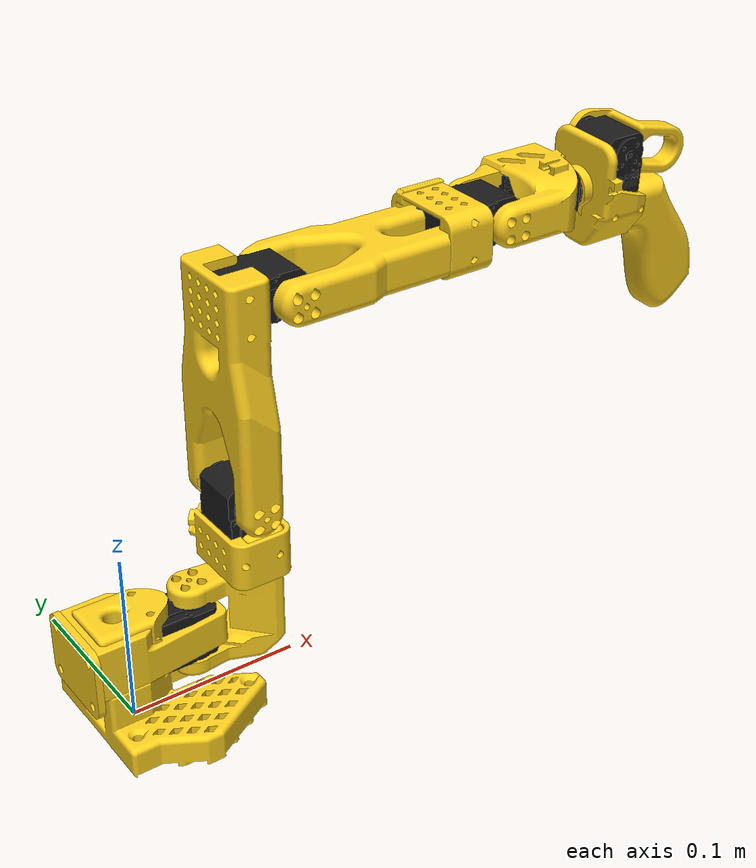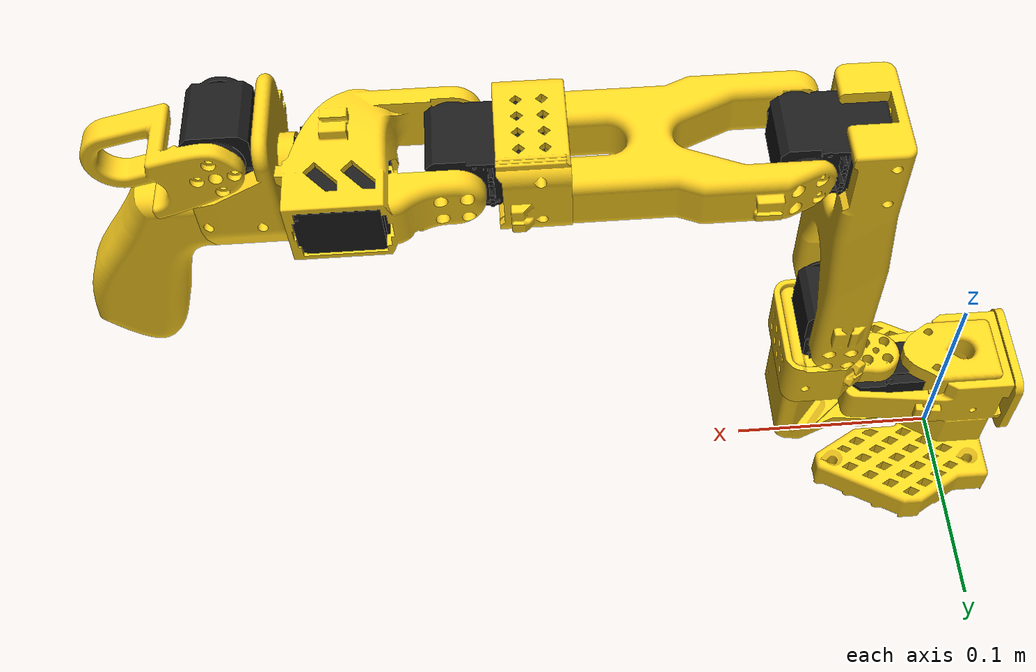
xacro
<?xml version="1.0"?>
<robot name="so101_arm" xmlns:xacro="http://www.ros.org/wiki/xacro">

  <xacro:arg name="variant" default="leader"/>          <!-- leader | follower -->
  <xacro:arg name="mesh_dir" default="package://so101_description/meshes"/>
  <xacro:arg name="add_transmissions" default="false"/>
  <xacro:arg name="use_ros2_control" default="false"/>
  <xacro:arg name="hardware_type" default="mock"/>
  <xacro:arg name="usb_port" default="/dev/ttyUSB0"/>
  <xacro:arg name="joint_config_file" default=""/>

  <!-- Camera args -->
  <xacro:arg name="enable_static_cam" default="false"/>
  <xacro:arg name="enable_wrist_cam" default="false"/>
  <xacro:arg name="cam_static_xyz" default="0.2 0.0 0.60"/>
  <xacro:arg name="cam_static_rpy" default="0.0 1.5708 0.0"/>
  <xacro:arg name="cam_wrist_xyz" default="0.0 0.0 -0.02"/>
  <xacro:arg name="cam_wrist_rpy" default="-1.5708 0.0 -1.5708"/>

  <!-- Convert args to properties for use in ${} expressions -->
  <xacro:property name="use_ros2_control" value="$(arg use_ros2_control)"/>
  <xacro:property name="variant" value="$(arg variant)"/>
  <xacro:property name="enable_static_cam" value="$(arg enable_static_cam)"/>
  <xacro:property name="enable_wrist_cam" value="$(arg enable_wrist_cam)"/>

  <xacro:include filename="$(find so101_description)/urdf/so101_macros.xacro"/>
  <xacro:include filename="$(find so101_description)/urdf/so101_materials.xacro"/>
  <xacro:include filename="$(find so101_description)/urdf/so101_arm_common.xacro"/>

  <xacro:include filename="$(find so101_description)/urdf/end_effectors/so101_ee_common.xacro"/>
  <xacro:include filename="$(find so101_description)/urdf/end_effectors/so101_ee_leader.xacro"/>
  <xacro:include filename="$(find so101_description)/urdf/end_effectors/so101_ee_follower.xacro"/>

  <xacro:include filename="$(find so101_description)/urdf/ros2_control/so101_ros2_control.xacro"/>
  <xacro:include filename="$(find so101_description)/urdf/so101_cameras.xacro"/>

  <xacro:so101_materials/>
  <xacro:so101_arm_common
    mesh_dir="$(arg mesh_dir)"
    add_transmissions="$(arg add_transmissions)"/>

  <xacro:if value="${variant == 'leader'}">
    <xacro:so101_ee_leader
      mesh_dir="$(arg mesh_dir)"
      add_transmissions="$(arg add_transmissions)"/>
  </xacro:if>

  <xacro:if value="${variant == 'follower'}">
    <xacro:so101_ee_follower
      mesh_dir="$(arg mesh_dir)"
      add_transmissions="$(arg add_transmissions)"/>
  </xacro:if>

  <xacro:if value="${use_ros2_control}">
    <xacro:so101_ros2_control
      variant="${variant}"
      hardware_type="$(arg hardware_type)"
      usb_port="$(arg usb_port)"
      joint_config_file="$(arg joint_config_file)"
      system_name="SO101_${variant}_SYSTEM"/>
  </xacro:if>

  <!-- Cameras (opt-in via enable_static_cam / enable_wrist_cam) -->
  <xacro:if value="${enable_static_cam}">
    <xacro:so101_static_camera
      xyz="$(arg cam_static_xyz)"
      rpy="$(arg cam_static_rpy)"/>
  </xacro:if>

  <xacro:if value="${enable_wrist_cam}">
    <xacro:so101_wrist_camera
      xyz="$(arg cam_wrist_xyz)"
      rpy="$(arg cam_wrist_rpy)"/>
  </xacro:if>

</robot>

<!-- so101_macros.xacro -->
<robot xmlns:xacro="http://www.ros.org/wiki/xacro">

  <!-- mesh visual + collision (same origin/mesh) -->
  <xacro:macro name="mesh_vc" params="filename xyz rpy material:=''">
    <visual>
      <origin xyz="${xyz}" rpy="${rpy}"/>
      <geometry><mesh filename="${filename}"/></geometry>
      <xacro:if value="${material != ''}">
        <material name="${material}"/>
      </xacro:if>
    </visual>
    <collision>
      <origin xyz="${xyz}" rpy="${rpy}"/>
      <geometry><mesh filename="${filename}"/></geometry>
    </collision>
  </xacro:macro>

  <xacro:macro name="inertial_block" params="xyz rpy mass ixx ixy ixz iyy iyz izz">
    <inertial>
      <origin xyz="${xyz}" rpy="${rpy}"/>
      <mass value="${mass}"/>
      <inertia ixx="${ixx}" ixy="${ixy}" ixz="${ixz}" iyy="${iyy}" iyz="${iyz}" izz="${izz}"/>
    </inertial>
  </xacro:macro>

  <xacro:macro name="simple_transmission" params="name joint actuator hw_if:='hardware_interface/PositionJointInterface' reduction:='1'">
    <transmission name="${name}">
      <type>transmission_interface/SimpleTransmission</type>
      <joint name="${joint}">
        <hardwareInterface>${hw_if}</hardwareInterface>
      </joint>
      <actuator name="${actuator}">
        <hardwareInterface>${hw_if}</hardwareInterface>
        <mechanicalReduction>${reduction}</mechanicalReduction>
      </actuator>
    </transmission>
  </xacro:macro>

</robot>

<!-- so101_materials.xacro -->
<robot xmlns:xacro="http://www.ros.org/wiki/xacro">

  <xacro:macro name="so101_materials" params="">
    <material name="3d_printed">
      <color rgba="1.0 0.82 0.12 1.0"/>
    </material>
    <material name="sts3215">
      <color rgba="0.1 0.1 0.1 1.0"/>
    </material>
  </xacro:macro>

</robot>

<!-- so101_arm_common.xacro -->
<robot xmlns:xacro="http://www.ros.org/wiki/xacro">

  <xacro:macro name="so101_arm_common"
               params="mesh_dir:='package://so101_description/meshes' add_transmissions:='false'">

    <!-- base_link -->
    <link name="base_link">
      <xacro:inertial_block
        xyz="0.0137179 -5.19711e-05 0.0334843" rpy="0 0 0"
        mass="0.147"
        ixx="0.000114686" ixy="-4.59787e-07" ixz="4.97151e-06"
        iyy="0.000136117" iyz="9.75275e-08" izz="0.000130364"/>

      <xacro:mesh_vc filename="${mesh_dir}/base_motor_holder_so101_v1.stl"
        xyz="-0.00636471 -9.94414e-05 -0.0024" rpy="1.5708 -1.67685e-15 1.5708" material="3d_printed"/>
      <xacro:mesh_vc filename="${mesh_dir}/base_so101_v2.stl"
        xyz="-0.00636471 -8.97657e-09 -0.0024" rpy="1.5708 -2.78073e-29 1.5708" material="3d_printed"/>
      <xacro:mesh_vc filename="${mesh_dir}/sts3215_03a_v1.stl"
        xyz="0.0263353 -8.97657e-09 0.0437" rpy="-8.21148e-16 7.84513e-18 1.249e-15" material="sts3215"/>
      <xacro:mesh_vc filename="${mesh_dir}/waveshare_mounting_plate_so101_v2.stl"
        xyz="-0.0309827 -0.000199441 0.0474" rpy="1.5708 -1.35493e-14 1.5708" material="3d_printed"/>
    </link>

    <!-- shoulder_link -->
    <link name="shoulder_link">
      <xacro:inertial_block
        xyz="-0.0307604 -1.66727e-05 -0.0252713" rpy="0 0 0"
        mass="0.100006"
        ixx="8.3759e-05" ixy="7.55525e-08" ixz="-1.16342e-06"
        iyy="8.10403e-05" iyz="1.54663e-07" izz="2.39783e-05"/>

      <xacro:mesh_vc filename="${mesh_dir}/sts3215_03a_v1.stl"
        xyz="-0.0303992 0.000422241 -0.0417" rpy="1.5708 1.5708 0" material="sts3215"/>
      <xacro:mesh_vc filename="${mesh_dir}/motor_holder_so101_base_v1.stl"
        xyz="-0.0675992 -0.000177759 0.0158499" rpy="1.5708 -1.5708 0" material="3d_printed"/>
      <xacro:mesh_vc filename="${mesh_dir}/rotation_pitch_so101_v1.stl"
        xyz="0.0122008 2.22413e-05 0.0464" rpy="-1.5708 2.35221e-33 0" material="3d_printed"/>
    </link>

    <!-- upper_arm_link -->
    <link name="upper_arm_link">
      <xacro:inertial_block
        xyz="-0.0898471 -0.00838224 0.0184089" rpy="0 0 0"
        mass="0.103"
        ixx="4.08002e-05" ixy="-1.97819e-05" ixz="-4.03016e-08"
        iyy="0.000147318" iyz="8.97326e-09" izz="0.000142487"/>

      <xacro:mesh_vc filename="${mesh_dir}/sts3215_03a_v1.stl"
        xyz="-0.11257 -0.0155 0.0187" rpy="-3.14159 -5.27356e-16 -1.5708" material="sts3215"/>
      <xacro:mesh_vc filename="${mesh_dir}/upper_arm_so101_v1.stl"
        xyz="-0.065085 0.012 0.0182" rpy="3.14159 -0 -1.30911e-30" material="3d_printed"/>
    </link>

    <!-- lower_arm_link -->
    <link name="lower_arm_link">
      <xacro:inertial_block
        xyz="-0.0980701 0.00324376 0.0182831" rpy="0 0 0"
        mass="0.104"
        ixx="2.87438e-05" ixy="7.41152e-06" ixz="1.26409e-06"
        iyy="0.000159844" iyz="-4.90188e-08" izz="0.00014529"/>

      <xacro:mesh_vc filename="${mesh_dir}/under_arm_so101_v1.stl"
        xyz="-0.0648499 -0.032 0.0182" rpy="3.14159 -0 6.67202e-31" material="3d_printed"/>
      <xacro:mesh_vc filename="${mesh_dir}/motor_holder_so101_wrist_v1.stl"
        xyz="-0.0648499 -0.032 0.018" rpy="-3.14159 -2.55351e-15 -1.83387e-30" material="3d_printed"/>
      <xacro:mesh_vc filename="${mesh_dir}/sts3215_03a_v1.stl"
        xyz="-0.1224 0.0052 0.0187" rpy="-3.14159 -7.88861e-31 -3.14159" material="sts3215"/>
    </link>

    <!-- wrist_link -->
    <link name="wrist_link">
      <xacro:inertial_block
        xyz="-0.000103312 -0.0386143 0.0281156" rpy="0 0 0"
        mass="0.079"
        ixx="3.68263e-05" ixy="1.7893e-08" ixz="-5.28128e-08"
        iyy="2.5391e-05" iyz="3.6412e-06" izz="2.1e-05"/>

      <xacro:mesh_vc filename="${mesh_dir}/sts3215_03a_no_horn_v1.stl"
        xyz="8.32667e-17 -0.0424 0.0306" rpy="1.5708 1.5708 0" material="sts3215"/>
      <xacro:mesh_vc filename="${mesh_dir}/wrist_roll_pitch_so101_v2.stl"
        xyz="0 -0.028 0.0181" rpy="-1.5708 -1.5708 0" material="3d_printed"/>
    </link>

    <!-- joints base->wrist -->
    <joint name="shoulder_pan" type="revolute">
      <origin xyz="0.0388353 -8.97657e-09 0.0624" rpy="3.14159 4.18253e-17 -3.14159"/>
      <parent link="base_link"/>
      <child link="shoulder_link"/>
      <axis xyz="0 0 1"/>
      <limit effort="10" velocity="10" lower="-1.91986" upper="1.91986"/>
    </joint>

    <joint name="shoulder_lift" type="revolute">
      <origin xyz="-0.0303992 -0.0182778 -0.0542" rpy="-1.5708 -1.5708 0"/>
      <parent link="shoulder_link"/>
      <child link="upper_arm_link"/>
      <axis xyz="0 0 1"/>
      <limit effort="10" velocity="10" lower="-1.74533" upper="1.74533"/>
    </joint>

    <joint name="elbow_flex" type="revolute">
      <origin xyz="-0.11257 -0.028 1.73763e-16" rpy="-3.63608e-16 8.74301e-16 1.5708"/>
      <parent link="upper_arm_link"/>
      <child link="lower_arm_link"/>
      <axis xyz="0 0 1"/>
      <limit effort="10" velocity="10" lower="-1.69" upper="1.69"/>
    </joint>

    <joint name="wrist_flex" type="revolute">
      <origin xyz="-0.1349 0.0052 3.62355e-17" rpy="4.02456e-15 8.67362e-16 -1.5708"/>
      <parent link="lower_arm_link"/>
      <child link="wrist_link"/>
      <axis xyz="0 0 1"/>
      <limit effort="10" velocity="10" lower="-1.65806" upper="1.65806"/>
    </joint>

    <!-- OPTIONAL transmissions motor1..motor4 -->
    <xacro:if value="${add_transmissions}">
      <xacro:simple_transmission name="shoulder_pan_trans"  joint="shoulder_pan"  actuator="motor1"/>
      <xacro:simple_transmission name="shoulder_lift_trans" joint="shoulder_lift" actuator="motor2"/>
      <xacro:simple_transmission name="elbow_flex_trans"    joint="elbow_flex"    actuator="motor3"/>
      <xacro:simple_transmission name="wrist_flex_trans"    joint="wrist_flex"    actuator="motor4"/>
    </xacro:if>

  </xacro:macro>

</robot>

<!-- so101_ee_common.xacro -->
<robot xmlns:xacro="http://www.ros.org/wiki/xacro">

  <!-- Shared: gripper_frame dummy link -->
  <xacro:macro name="so101_gripper_frame">
    <link name="gripper_frame_link">
      <inertial>
        <origin xyz="0 0 0" rpy="0 0 0"/>
        <mass value="1e-9"/>
        <inertia ixx="0" ixy="0" ixz="0" iyy="0" iyz="0" izz="0"/>
      </inertial>
    </link>

    <joint name="gripper_frame_joint" type="fixed">
      <origin xyz="-0.0079 -0.000218121 -0.0981274" rpy="0 3.14159 0"/>
      <parent link="gripper_link"/>
      <child link="gripper_frame_link"/>
    </joint>
  </xacro:macro>

  <!-- Shared: wrist_roll joint (+ optional transmission) -->
  <xacro:macro name="so101_wrist_roll_joint"
               params="add_transmission:='false'">
    <joint name="wrist_roll" type="revolute">
      <origin xyz="5.55112e-17 -0.0611 0.0181" rpy="1.5708 0.0486795 3.14159"/>
      <parent link="wrist_link"/>
      <child link="gripper_link"/>
      <axis xyz="0 0 1"/>
      <limit effort="10" velocity="10" lower="-2.74385" upper="2.84121"/>
    </joint>

    <xacro:if value="${add_transmission}">
      <xacro:simple_transmission
        name="wrist_roll_trans"
        joint="wrist_roll"
        actuator="motor5"/>
    </xacro:if>
  </xacro:macro>

</robot>

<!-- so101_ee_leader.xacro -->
<robot xmlns:xacro="http://www.ros.org/wiki/xacro">

  <xacro:macro name="so101_ee_leader"
               params="mesh_dir:='package://so101_description/meshes' add_transmissions:='false'">

    <link name="gripper_link">
      <xacro:inertial_block
        xyz="0.000213627 0.000245138 -0.025187" rpy="0 0 0"
        mass="0.087"
        ixx="2.75087e-05" ixy="-3.35241e-07" ixz="-5.7352e-06"
        iyy="4.33657e-05" iyz="-5.17847e-08" izz="3.45059e-05"/>

      <xacro:mesh_vc filename="${mesh_dir}/sts3215_03a_v1.stl"
        xyz="0.0077 0.0001 -0.0234" rpy="-1.5708 -5.19179e-17 -1.66533e-16" material="sts3215"/>

      <xacro:mesh_vc filename="${mesh_dir}/wrist_roll_so101_v1.stl"
        xyz="8.32667e-17 -0.000218214 0.000949706" rpy="-3.14159 -5.55112e-17 0" material="3d_printed"/>

      <xacro:mesh_vc filename="${mesh_dir}/handle_so101_v1.stl"
        xyz="8.32667e-17 -0.000218214 0.000949706" rpy="-3.14159 -5.55112e-17 0" material="3d_printed"/>
    </link>

    <xacro:so101_gripper_frame />

    <link name="trigger_so101_v1_link">
      <xacro:inertial_block
        xyz="-0.00157495 -0.0300244 0.0192755" rpy="0 0 0"
        mass="0.012"
        ixx="6.61427e-06" ixy="-3.19807e-07" ixz="-5.90717e-09"
        iyy="1.89032e-06" iyz="-1.09945e-07" izz="5.28738e-06"/>

      <xacro:mesh_vc filename="${mesh_dir}/trigger_so101_v1.stl"
        xyz="-5.55112e-17 -5.55112e-17 0.0" rpy="9.53145e-17 3.14159 -0.7" material="3d_printed"/>
    </link>

    <joint name="gripper" type="revolute">
      <origin xyz="0.0202 0.0188 -0.0234" rpy="1.5708 -5.24284e-08 -1.41553e-15"/>
      <parent link="gripper_link"/>
      <child link="trigger_so101_v1_link"/>
      <axis xyz="0 0 1"/>
      <limit effort="10" velocity="10" lower="-0.174533" upper="1.74533"/>
    </joint>

    <xacro:so101_wrist_roll_joint
      add_transmission="${add_transmissions}"/>

  </xacro:macro>

</robot>
